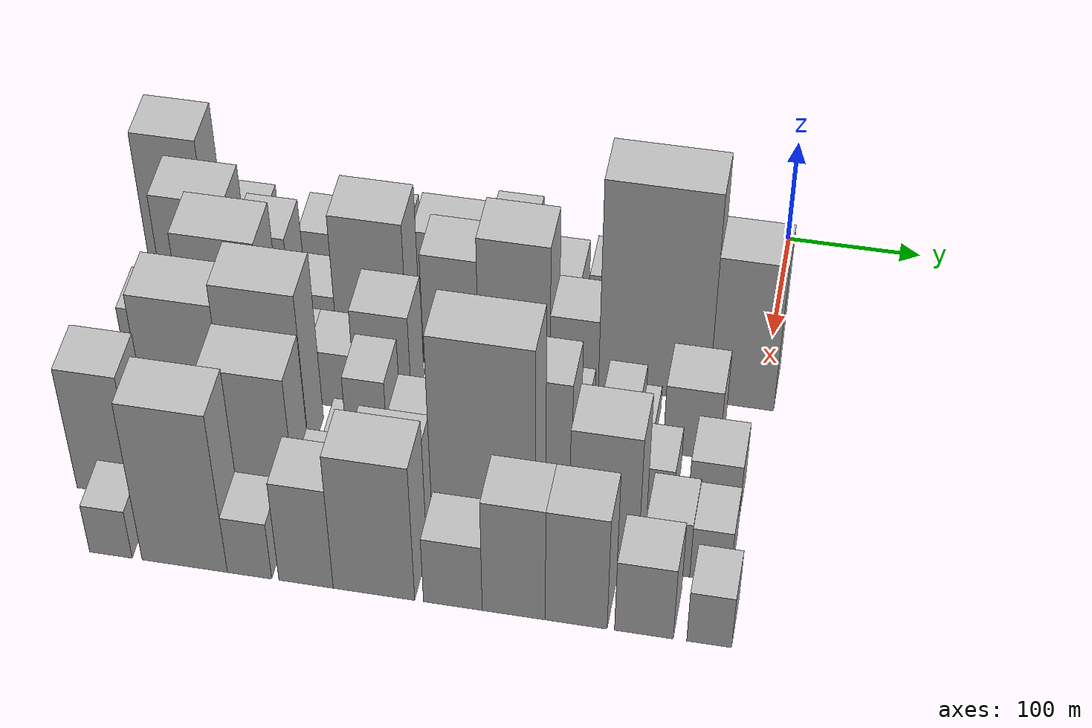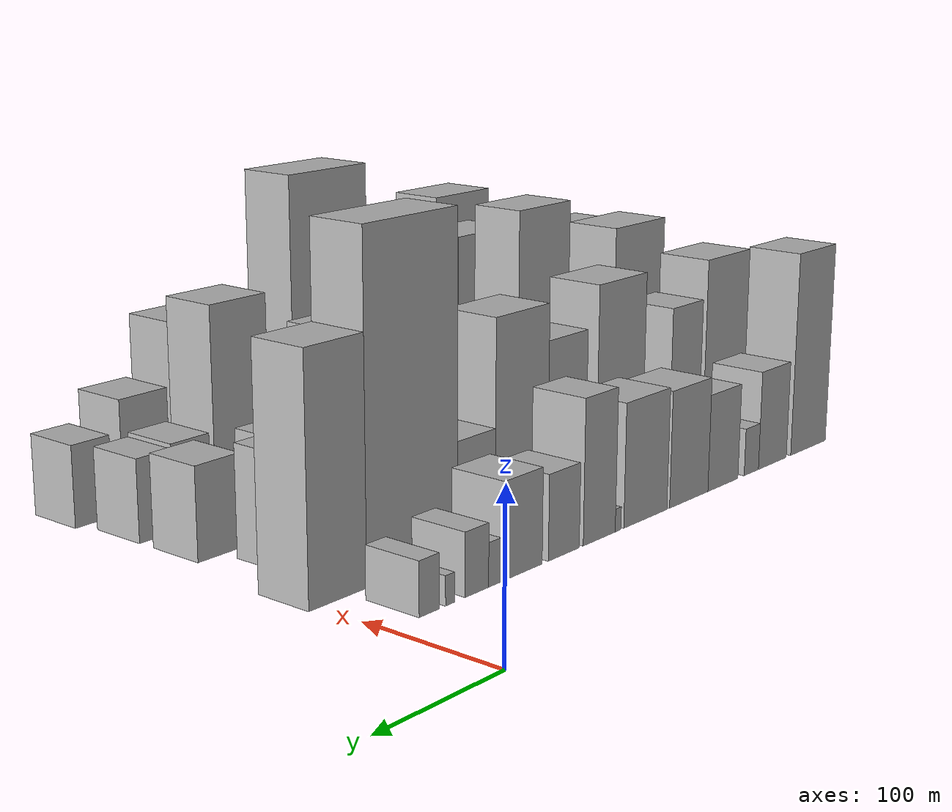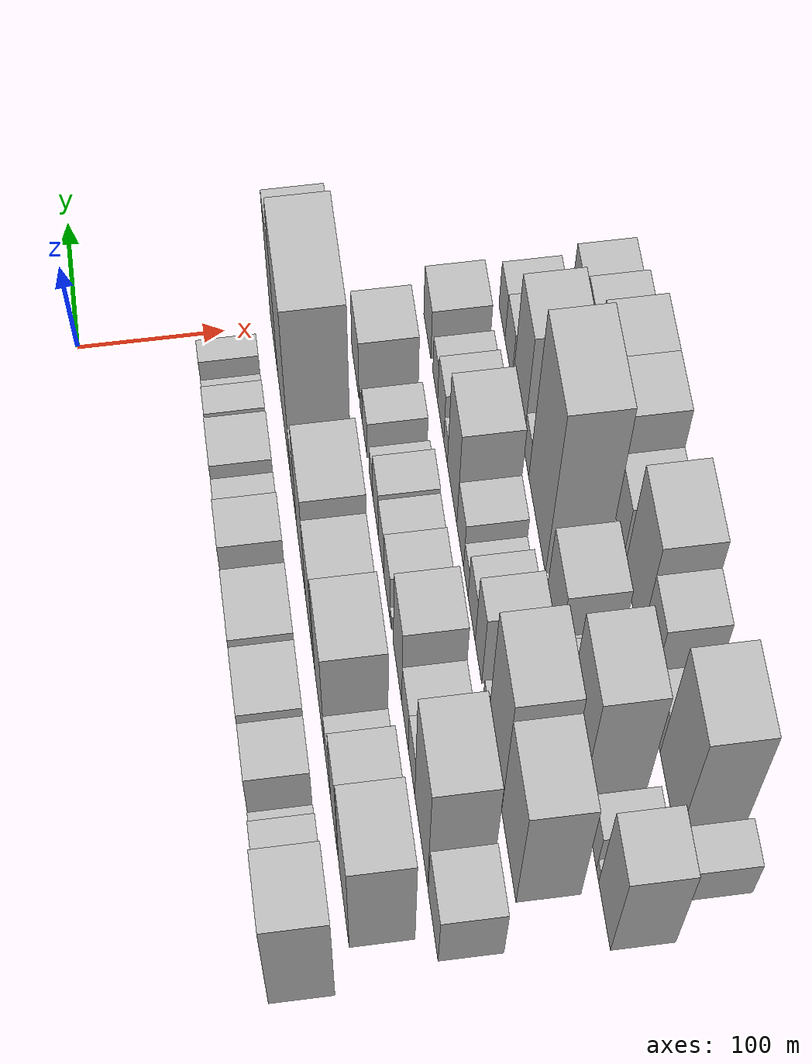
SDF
<sdf version="1.6">
 <world name="default">
  <model name="building_13">
   <static>1</static>
   <pose>100.0000 -442.8668 0 0.000000 0.000000 0.000000</pose>
   <link name="link">
    <pose>0 0 72.00 0 0 0</pose>
    <collision name="collision"><geometry><box><size>40.0000 48.4077 144.0000</size></box></geometry></collision>
    <visual name="visual">
     <cast_shadows>0</cast_shadows>
     <geometry><box><size>40.0000 48.4077 144.0000</size></box></geometry>
     <material>
      <script>
       <uri>model://HANNAS_wall/materials/scripts</uri>
       <uri>model://HANNAS_wall/materials/textures</uri>
       <name>vrc/HANNAS_wall</name>
      </script>
     </material>
    </visual>
   </link>
  </model>
  <model name="building_14">
   <static>1</static>
   <pose>100.0000 -394.2044 0 0.000000 0.000000 0.000000</pose>
   <link name="link">
    <pose>0 0 34.50 0 0 0</pose>
    <collision name="collision"><geometry><box><size>40.0000 36.9172 69.0000</size></box></geometry></collision>
    <visual name="visual">
     <cast_shadows>0</cast_shadows>
     <geometry><box><size>40.0000 36.9172 69.0000</size></box></geometry>
     <material>
      <script>
       <uri>model://HANNAS_wall/materials/scripts</uri>
       <uri>model://HANNAS_wall/materials/textures</uri>
       <name>vrc/HANNAS_wall</name>
      </script>
     </material>
    </visual>
   </link>
  </model>
  <model name="building_15">
   <static>1</static>
   <pose>100.0000 -366.6062 0 0.000000 0.000000 0.000000</pose>
   <link name="link">
    <pose>0 0 16.50 0 0 0</pose>
    <collision name="collision"><geometry><box><size>40.0000 18.2792 33.0000</size></box></geometry></collision>
    <visual name="visual">
     <cast_shadows>0</cast_shadows>
     <geometry><box><size>40.0000 18.2792 33.0000</size></box></geometry>
     <material>
      <script>
       <uri>model://HANNAS_wall/materials/scripts</uri>
       <uri>model://HANNAS_wall/materials/textures</uri>
       <name>vrc/HANNAS_wall</name>
      </script>
     </material>
    </visual>
   </link>
  </model>
  <model name="building_16">
   <static>1</static>
   <pose>100.0000 -330.9921 0 0.000000 0.000000 0.000000</pose>
   <link name="link">
    <pose>0 0 33.00 0 0 0</pose>
    <collision name="collision"><geometry><box><size>40.0000 36.9489 66.0000</size></box></geometry></collision>
    <visual name="visual">
     <cast_shadows>0</cast_shadows>
     <geometry><box><size>40.0000 36.9489 66.0000</size></box></geometry>
     <material>
      <script>
       <uri>model://HANNAS_wall/materials/scripts</uri>
       <uri>model://HANNAS_wall/materials/textures</uri>
       <name>vrc/HANNAS_wall</name>
      </script>
     </material>
    </visual>
   </link>
  </model>
  <model name="building_17">
   <static>1</static>
   <pose>100.0000 -290.0274 0 0.000000 0.000000 0.000000</pose>
   <link name="link">
    <pose>0 0 39.00 0 0 0</pose>
    <collision name="collision"><geometry><box><size>40.0000 44.9806 78.0000</size></box></geometry></collision>
    <visual name="visual">
     <cast_shadows>0</cast_shadows>
     <geometry><box><size>40.0000 44.9806 78.0000</size></box></geometry>
     <material>
      <script>
       <uri>model://HANNAS_wall/materials/scripts</uri>
       <uri>model://HANNAS_wall/materials/textures</uri>
       <name>vrc/HANNAS_wall</name>
      </script>
     </material>
    </visual>
   </link>
  </model>
  <model name="building_18">
   <static>1</static>
   <pose>100.0000 -240.7067 0 0.000000 0.000000 0.000000</pose>
   <link name="link">
    <pose>0 0 40.50 0 0 0</pose>
    <collision name="collision"><geometry><box><size>40.0000 47.6607 81.0000</size></box></geometry></collision>
    <visual name="visual">
     <cast_shadows>0</cast_shadows>
     <geometry><box><size>40.0000 47.6607 81.0000</size></box></geometry>
     <material>
      <script>
       <uri>model://HANNAS_wall/materials/scripts</uri>
       <uri>model://HANNAS_wall/materials/textures</uri>
       <name>vrc/HANNAS_wall</name>
      </script>
     </material>
    </visual>
   </link>
  </model>
  <model name="building_19">
   <static>1</static>
   <pose>100.0000 -210.8324 0 0.000000 0.000000 0.000000</pose>
   <link name="link">
    <pose>0 0 7.50 0 0 0</pose>
    <collision name="collision"><geometry><box><size>40.0000 6.0879 15.0000</size></box></geometry></collision>
    <visual name="visual">
     <cast_shadows>0</cast_shadows>
     <geometry><box><size>40.0000 6.0879 15.0000</size></box></geometry>
     <material>
      <script>
       <uri>model://HANNAS_wall/materials/scripts</uri>
       <uri>model://HANNAS_wall/materials/textures</uri>
       <name>vrc/HANNAS_wall</name>
      </script>
     </material>
    </visual>
   </link>
  </model>
  <model name="building_20">
   <static>1</static>
   <pose>100.0000 -191.2011 0 0.000000 0.000000 0.000000</pose>
   <link name="link">
    <pose>0 0 46.50 0 0 0</pose>
    <collision name="collision"><geometry><box><size>40.0000 33.1748 93.0000</size></box></geometry></collision>
    <visual name="visual">
     <cast_shadows>0</cast_shadows>
     <geometry><box><size>40.0000 33.1748 93.0000</size></box></geometry>
     <material>
      <script>
       <uri>model://HANNAS_wall/materials/scripts</uri>
       <uri>model://HANNAS_wall/materials/textures</uri>
       <name>vrc/HANNAS_wall</name>
      </script>
     </material>
    </visual>
   </link>
  </model>
  <model name="building_21">
   <static>1</static>
   <pose>100.0000 -155.3330 0 0.000000 0.000000 0.000000</pose>
   <link name="link">
    <pose>0 0 27.00 0 0 0</pose>
    <collision name="collision"><geometry><box><size>40.0000 30.5614 54.0000</size></box></geometry></collision>
    <visual name="visual">
     <cast_shadows>0</cast_shadows>
     <geometry><box><size>40.0000 30.5614 54.0000</size></box></geometry>
     <material>
      <script>
       <uri>model://HANNAS_wall/materials/scripts</uri>
       <uri>model://HANNAS_wall/materials/textures</uri>
       <name>vrc/HANNAS_wall</name>
      </script>
     </material>
    </visual>
   </link>
  </model>
  <model name="building_22">
   <static>1</static>
   <pose>100.0000 -116.2851 0 0.000000 0.000000 0.000000</pose>
   <link name="link">
    <pose>0 0 30.00 0 0 0</pose>
    <collision name="collision"><geometry><box><size>40.0000 35.5343 60.0000</size></box></geometry></collision>
    <visual name="visual">
     <cast_shadows>0</cast_shadows>
     <geometry><box><size>40.0000 35.5343 60.0000</size></box></geometry>
     <material>
      <script>
       <uri>model://HANNAS_wall/materials/scripts</uri>
       <uri>model://HANNAS_wall/materials/textures</uri>
       <name>vrc/HANNAS_wall</name>
      </script>
     </material>
    </visual>
   </link>
  </model>
  <model name="building_23">
   <static>1</static>
   <pose>100.0000 -89.9354 0 0.000000 0.000000 0.000000</pose>
   <link name="link">
    <pose>0 0 13.50 0 0 0</pose>
    <collision name="collision"><geometry><box><size>40.0000 11.1652 27.0000</size></box></geometry></collision>
    <visual name="visual">
     <cast_shadows>0</cast_shadows>
     <geometry><box><size>40.0000 11.1652 27.0000</size></box></geometry>
     <material>
      <script>
       <uri>model://HANNAS_wall/materials/scripts</uri>
       <uri>model://HANNAS_wall/materials/textures</uri>
       <name>vrc/HANNAS_wall</name>
      </script>
     </material>
    </visual>
   </link>
  </model>
  <model name="building_24">
   <static>1</static>
   <pose>100.0000 -73.9870 0 0.000000 0.000000 0.000000</pose>
   <link name="link">
    <pose>0 0 19.50 0 0 0</pose>
    <collision name="collision"><geometry><box><size>40.0000 20.7316 39.0000</size></box></geometry></collision>
    <visual name="visual">
     <cast_shadows>0</cast_shadows>
     <geometry><box><size>40.0000 20.7316 39.0000</size></box></geometry>
     <material>
      <script>
       <uri>model://HANNAS_wall/materials/scripts</uri>
       <uri>model://HANNAS_wall/materials/textures</uri>
       <name>vrc/HANNAS_wall</name>
      </script>
     </material>
    </visual>
   </link>
  </model>
  <model name="building_25">
   <static>1</static>
   <pose>100.0000 -50.6475 0 0.000000 0.000000 0.000000</pose>
   <link name="link">
    <pose>0 0 9.00 0 0 0</pose>
    <collision name="collision"><geometry><box><size>40.0000 7.9473 18.0000</size></box></geometry></collision>
    <visual name="visual">
     <cast_shadows>0</cast_shadows>
     <geometry><box><size>40.0000 7.9473 18.0000</size></box></geometry>
     <material>
      <script>
       <uri>model://HANNAS_wall/materials/scripts</uri>
       <uri>model://HANNAS_wall/materials/textures</uri>
       <name>vrc/HANNAS_wall</name>
      </script>
     </material>
    </visual>
   </link>
  </model>
  <model name="building_26">
   <static>1</static>
   <pose>100.0000 -33.1180 0 0.000000 0.000000 0.000000</pose>
   <link name="link">
    <pose>0 0 16.50 0 0 0</pose>
    <collision name="collision"><geometry><box><size>40.0000 17.1118 33.0000</size></box></geometry></collision>
    <visual name="visual">
     <cast_shadows>0</cast_shadows>
     <geometry><box><size>40.0000 17.1118 33.0000</size></box></geometry>
     <material>
      <script>
       <uri>model://HANNAS_wall/materials/scripts</uri>
       <uri>model://HANNAS_wall/materials/textures</uri>
       <name>vrc/HANNAS_wall</name>
      </script>
     </material>
    </visual>
   </link>
  </model>
  <model name="building_63">
   <static>1</static>
   <pose>152.0000 -412.0536 0 0.000000 0.000000 0.000000</pose>
   <link name="link">
    <pose>0 0 69.00 0 0 0</pose>
    <collision name="collision"><geometry><box><size>40.0000 53.6897 138.0000</size></box></geometry></collision>
    <visual name="visual">
     <cast_shadows>0</cast_shadows>
     <geometry><box><size>40.0000 53.6897 138.0000</size></box></geometry>
     <material>
      <script>
       <uri>model://HANNAS_wall/materials/scripts</uri>
       <uri>model://HANNAS_wall/materials/textures</uri>
       <name>vrc/HANNAS_wall</name>
      </script>
     </material>
    </visual>
   </link>
  </model>
  <model name="building_64">
   <static>1</static>
   <pose>152.0000 -361.8021 0 0.000000 0.000000 0.000000</pose>
   <link name="link">
    <pose>0 0 55.50 0 0 0</pose>
    <collision name="collision"><geometry><box><size>40.0000 36.8133 111.0000</size></box></geometry></collision>
    <visual name="visual">
     <cast_shadows>0</cast_shadows>
     <geometry><box><size>40.0000 36.8133 111.0000</size></box></geometry>
     <material>
      <script>
       <uri>model://HANNAS_wall/materials/scripts</uri>
       <uri>model://HANNAS_wall/materials/textures</uri>
       <name>vrc/HANNAS_wall</name>
      </script>
     </material>
    </visual>
   </link>
  </model>
  <model name="building_65">
   <static>1</static>
   <pose>152.0000 -327.1428 0 0.000000 0.000000 0.000000</pose>
   <link name="link">
    <pose>0 0 28.50 0 0 0</pose>
    <collision name="collision"><geometry><box><size>40.0000 32.5052 57.0000</size></box></geometry></collision>
    <visual name="visual">
     <cast_shadows>0</cast_shadows>
     <geometry><box><size>40.0000 32.5052 57.0000</size></box></geometry>
     <material>
      <script>
       <uri>model://HANNAS_wall/materials/scripts</uri>
       <uri>model://HANNAS_wall/materials/textures</uri>
       <name>vrc/HANNAS_wall</name>
      </script>
     </material>
    </visual>
   </link>
  </model>
  <model name="building_66">
   <static>1</static>
   <pose>152.0000 -284.6054 0 0.000000 0.000000 0.000000</pose>
   <link name="link">
    <pose>0 0 70.50 0 0 0</pose>
    <collision name="collision"><geometry><box><size>40.0000 52.5697 141.0000</size></box></geometry></collision>
    <visual name="visual">
     <cast_shadows>0</cast_shadows>
     <geometry><box><size>40.0000 52.5697 141.0000</size></box></geometry>
     <material>
      <script>
       <uri>model://HANNAS_wall/materials/scripts</uri>
       <uri>model://HANNAS_wall/materials/textures</uri>
       <name>vrc/HANNAS_wall</name>
      </script>
     </material>
    </visual>
   </link>
  </model>
  <model name="building_67">
   <static>1</static>
   <pose>152.0000 -252.5004 0 0.000000 0.000000 0.000000</pose>
   <link name="link">
    <pose>0 0 13.50 0 0 0</pose>
    <collision name="collision"><geometry><box><size>40.0000 11.6403 27.0000</size></box></geometry></collision>
    <visual name="visual">
     <cast_shadows>0</cast_shadows>
     <geometry><box><size>40.0000 11.6403 27.0000</size></box></geometry>
     <material>
      <script>
       <uri>model://HANNAS_wall/materials/scripts</uri>
       <uri>model://HANNAS_wall/materials/textures</uri>
       <name>vrc/HANNAS_wall</name>
      </script>
     </material>
    </visual>
   </link>
  </model>
  <model name="building_68">
   <static>1</static>
   <pose>152.0000 -226.4632 0 0.000000 0.000000 0.000000</pose>
   <link name="link">
    <pose>0 0 57.00 0 0 0</pose>
    <collision name="collision"><geometry><box><size>40.0000 40.4341 114.0000</size></box></geometry></collision>
    <visual name="visual">
     <cast_shadows>0</cast_shadows>
     <geometry><box><size>40.0000 40.4341 114.0000</size></box></geometry>
     <material>
      <script>
       <uri>model://HANNAS_wall/materials/scripts</uri>
       <uri>model://HANNAS_wall/materials/textures</uri>
       <name>vrc/HANNAS_wall</name>
      </script>
     </material>
    </visual>
   </link>
  </model>
  <model name="building_69">
   <static>1</static>
   <pose>152.0000 -180.0314 0 0.000000 0.000000 0.000000</pose>
   <link name="link">
    <pose>0 0 69.00 0 0 0</pose>
    <collision name="collision"><geometry><box><size>40.0000 52.4296 138.0000</size></box></geometry></collision>
    <visual name="visual">
     <cast_shadows>0</cast_shadows>
     <geometry><box><size>40.0000 52.4296 138.0000</size></box></geometry>
     <material>
      <script>
       <uri>model://HANNAS_wall/materials/scripts</uri>
       <uri>model://HANNAS_wall/materials/textures</uri>
       <name>vrc/HANNAS_wall</name>
      </script>
     </material>
    </visual>
   </link>
  </model>
  <model name="building_70">
   <static>1</static>
   <pose>152.0000 -136.0870 0 0.000000 0.000000 0.000000</pose>
   <link name="link">
    <pose>0 0 34.50 0 0 0</pose>
    <collision name="collision"><geometry><box><size>40.0000 35.4592 69.0000</size></box></geometry></collision>
    <visual name="visual">
     <cast_shadows>0</cast_shadows>
     <geometry><box><size>40.0000 35.4592 69.0000</size></box></geometry>
     <material>
      <script>
       <uri>model://HANNAS_wall/materials/scripts</uri>
       <uri>model://HANNAS_wall/materials/textures</uri>
       <name>vrc/HANNAS_wall</name>
      </script>
     </material>
    </visual>
   </link>
  </model>
  <model name="building_71">
   <static>1</static>
   <pose>152.0000 -78.3478 0 0.000000 0.000000 0.000000</pose>
   <link name="link">
    <pose>0 0 105.00 0 0 0</pose>
    <collision name="collision"><geometry><box><size>40.0000 80.0192 210.0000</size></box></geometry></collision>
    <visual name="visual">
     <cast_shadows>0</cast_shadows>
     <geometry><box><size>40.0000 80.0192 210.0000</size></box></geometry>
     <material>
      <script>
       <uri>model://HANNAS_wall/materials/scripts</uri>
       <uri>model://HANNAS_wall/materials/textures</uri>
       <name>vrc/HANNAS_wall</name>
      </script>
     </material>
    </visual>
   </link>
  </model>
  <model name="building_72">
   <static>1</static>
   <pose>152.0000 -14.9085 0 0.000000 0.000000 0.000000</pose>
   <link name="link">
    <pose>0 0 75.00 0 0 0</pose>
    <collision name="collision"><geometry><box><size>40.0000 46.8594 150.0000</size></box></geometry></collision>
    <visual name="visual">
     <cast_shadows>0</cast_shadows>
     <geometry><box><size>40.0000 46.8594 150.0000</size></box></geometry>
     <material>
      <script>
       <uri>model://HANNAS_wall/materials/scripts</uri>
       <uri>model://HANNAS_wall/materials/textures</uri>
       <name>vrc/HANNAS_wall</name>
      </script>
     </material>
    </visual>
   </link>
  </model>
  <model name="building_106">
   <static>1</static>
   <pose>204.0000 -431.9958 0 0.000000 0.000000 0.000000</pose>
   <link name="link">
    <pose>0 0 37.50 0 0 0</pose>
    <collision name="collision"><geometry><box><size>40.0000 44.2506 75.0000</size></box></geometry></collision>
    <visual name="visual">
     <cast_shadows>0</cast_shadows>
     <geometry><box><size>40.0000 44.2506 75.0000</size></box></geometry>
     <material>
      <script>
       <uri>model://HANNAS_wall/materials/scripts</uri>
       <uri>model://HANNAS_wall/materials/textures</uri>
       <name>vrc/HANNAS_wall</name>
      </script>
     </material>
    </visual>
   </link>
  </model>
  <model name="building_107">
   <static>1</static>
   <pose>204.0000 -377.4694 0 0.000000 0.000000 0.000000</pose>
   <link name="link">
    <pose>0 0 79.50 0 0 0</pose>
    <collision name="collision"><geometry><box><size>40.0000 58.8022 159.0000</size></box></geometry></collision>
    <visual name="visual">
     <cast_shadows>0</cast_shadows>
     <geometry><box><size>40.0000 58.8022 159.0000</size></box></geometry>
     <material>
      <script>
       <uri>model://HANNAS_wall/materials/scripts</uri>
       <uri>model://HANNAS_wall/materials/textures</uri>
       <name>vrc/HANNAS_wall</name>
      </script>
     </material>
    </visual>
   </link>
  </model>
  <model name="building_108">
   <static>1</static>
   <pose>204.0000 -332.6631 0 0.000000 0.000000 0.000000</pose>
   <link name="link">
    <pose>0 0 28.50 0 0 0</pose>
    <collision name="collision"><geometry><box><size>40.0000 30.8104 57.0000</size></box></geometry></collision>
    <visual name="visual">
     <cast_shadows>0</cast_shadows>
     <geometry><box><size>40.0000 30.8104 57.0000</size></box></geometry>
     <material>
      <script>
       <uri>model://HANNAS_wall/materials/scripts</uri>
       <uri>model://HANNAS_wall/materials/textures</uri>
       <name>vrc/HANNAS_wall</name>
      </script>
     </material>
    </visual>
   </link>
  </model>
  <model name="building_109">
   <static>1</static>
   <pose>204.0000 -301.2770 0 0.000000 0.000000 0.000000</pose>
   <link name="link">
    <pose>0 0 28.50 0 0 0</pose>
    <collision name="collision"><geometry><box><size>40.0000 31.9618 57.0000</size></box></geometry></collision>
    <visual name="visual">
     <cast_shadows>0</cast_shadows>
     <geometry><box><size>40.0000 31.9618 57.0000</size></box></geometry>
     <material>
      <script>
       <uri>model://HANNAS_wall/materials/scripts</uri>
       <uri>model://HANNAS_wall/materials/textures</uri>
       <name>vrc/HANNAS_wall</name>
      </script>
     </material>
    </visual>
   </link>
  </model>
  <model name="building_110">
   <static>1</static>
   <pose>204.0000 -264.7619 0 0.000000 0.000000 0.000000</pose>
   <link name="link">
    <pose>0 0 52.50 0 0 0</pose>
    <collision name="collision"><geometry><box><size>40.0000 41.0684 105.0000</size></box></geometry></collision>
    <visual name="visual">
     <cast_shadows>0</cast_shadows>
     <geometry><box><size>40.0000 41.0684 105.0000</size></box></geometry>
     <material>
      <script>
       <uri>model://HANNAS_wall/materials/scripts</uri>
       <uri>model://HANNAS_wall/materials/textures</uri>
       <name>vrc/HANNAS_wall</name>
      </script>
     </material>
    </visual>
   </link>
  </model>
  <model name="building_111">
   <static>1</static>
   <pose>204.0000 -230.5178 0 0.000000 0.000000 0.000000</pose>
   <link name="link">
    <pose>0 0 9.00 0 0 0</pose>
    <collision name="collision"><geometry><box><size>40.0000 7.4198 18.0000</size></box></geometry></collision>
    <visual name="visual">
     <cast_shadows>0</cast_shadows>
     <geometry><box><size>40.0000 7.4198 18.0000</size></box></geometry>
     <material>
      <script>
       <uri>model://HANNAS_wall/materials/scripts</uri>
       <uri>model://HANNAS_wall/materials/textures</uri>
       <name>vrc/HANNAS_wall</name>
      </script>
     </material>
    </visual>
   </link>
  </model>
  <model name="building_112">
   <static>1</static>
   <pose>204.0000 -211.2936 0 0.000000 0.000000 0.000000</pose>
   <link name="link">
    <pose>0 0 30.00 0 0 0</pose>
    <collision name="collision"><geometry><box><size>40.0000 31.0286 60.0000</size></box></geometry></collision>
    <visual name="visual">
     <cast_shadows>0</cast_shadows>
     <geometry><box><size>40.0000 31.0286 60.0000</size></box></geometry>
     <material>
      <script>
       <uri>model://HANNAS_wall/materials/scripts</uri>
       <uri>model://HANNAS_wall/materials/textures</uri>
       <name>vrc/HANNAS_wall</name>
      </script>
     </material>
    </visual>
   </link>
  </model>
  <model name="building_113">
   <static>1</static>
   <pose>204.0000 -181.3317 0 0.000000 0.000000 0.000000</pose>
   <link name="link">
    <pose>0 0 25.50 0 0 0</pose>
    <collision name="collision"><geometry><box><size>40.0000 28.8951 51.0000</size></box></geometry></collision>
    <visual name="visual">
     <cast_shadows>0</cast_shadows>
     <geometry><box><size>40.0000 28.8951 51.0000</size></box></geometry>
     <material>
      <script>
       <uri>model://HANNAS_wall/materials/scripts</uri>
       <uri>model://HANNAS_wall/materials/textures</uri>
       <name>vrc/HANNAS_wall</name>
      </script>
     </material>
    </visual>
   </link>
  </model>
  <model name="building_114">
   <static>1</static>
   <pose>204.0000 -152.5142 0 0.000000 0.000000 0.000000</pose>
   <link name="link">
    <pose>0 0 28.50 0 0 0</pose>
    <collision name="collision"><geometry><box><size>40.0000 28.7399 57.0000</size></box></geometry></collision>
    <visual name="visual">
     <cast_shadows>0</cast_shadows>
     <geometry><box><size>40.0000 28.7399 57.0000</size></box></geometry>
     <material>
      <script>
       <uri>model://HANNAS_wall/materials/scripts</uri>
       <uri>model://HANNAS_wall/materials/textures</uri>
       <name>vrc/HANNAS_wall</name>
      </script>
     </material>
    </visual>
   </link>
  </model>
  <model name="building_115">
   <static>1</static>
   <pose>204.0000 -128.4419 0 0.000000 0.000000 0.000000</pose>
   <link name="link">
    <pose>0 0 16.50 0 0 0</pose>
    <collision name="collision"><geometry><box><size>40.0000 19.4047 33.0000</size></box></geometry></collision>
    <visual name="visual">
     <cast_shadows>0</cast_shadows>
     <geometry><box><size>40.0000 19.4047 33.0000</size></box></geometry>
     <material>
      <script>
       <uri>model://HANNAS_wall/materials/scripts</uri>
       <uri>model://HANNAS_wall/materials/textures</uri>
       <name>vrc/HANNAS_wall</name>
      </script>
     </material>
    </visual>
   </link>
  </model>
  <model name="building_116">
   <static>1</static>
   <pose>204.0000 -95.3311 0 0.000000 0.000000 0.000000</pose>
   <link name="link">
    <pose>0 0 22.50 0 0 0</pose>
    <collision name="collision"><geometry><box><size>40.0000 26.8168 45.0000</size></box></geometry></collision>
    <visual name="visual">
     <cast_shadows>0</cast_shadows>
     <geometry><box><size>40.0000 26.8168 45.0000</size></box></geometry>
     <material>
      <script>
       <uri>model://HANNAS_wall/materials/scripts</uri>
       <uri>model://HANNAS_wall/materials/textures</uri>
       <name>vrc/HANNAS_wall</name>
      </script>
     </material>
    </visual>
   </link>
  </model>
  <model name="building_117">
   <static>1</static>
   <pose>204.0000 -76.4232 0 0.000000 0.000000 0.000000</pose>
   <link name="link">
    <pose>0 0 12.00 0 0 0</pose>
    <collision name="collision"><geometry><box><size>40.0000 10.9991 24.0000</size></box></geometry></collision>
    <visual name="visual">
     <cast_shadows>0</cast_shadows>
     <geometry><box><size>40.0000 10.9991 24.0000</size></box></geometry>
     <material>
      <script>
       <uri>model://HANNAS_wall/materials/scripts</uri>
       <uri>model://HANNAS_wall/materials/textures</uri>
       <name>vrc/HANNAS_wall</name>
      </script>
     </material>
    </visual>
   </link>
  </model>
  <model name="building_118">
   <static>1</static>
   <pose>204.0000 -43.9648 0 0.000000 0.000000 0.000000</pose>
   <link name="link">
    <pose>0 0 36.00 0 0 0</pose>
    <collision name="collision"><geometry><box><size>40.0000 39.9176 72.0000</size></box></geometry></collision>
    <visual name="visual">
     <cast_shadows>0</cast_shadows>
     <geometry><box><size>40.0000 39.9176 72.0000</size></box></geometry>
     <material>
      <script>
       <uri>model://HANNAS_wall/materials/scripts</uri>
       <uri>model://HANNAS_wall/materials/textures</uri>
       <name>vrc/HANNAS_wall</name>
      </script>
     </material>
    </visual>
   </link>
  </model>
  <model name="building_158">
   <static>1</static>
   <pose>256.0000 -394.2162 0 0.000000 0.000000 0.000000</pose>
   <link name="link">
    <pose>0 0 75.00 0 0 0</pose>
    <collision name="collision"><geometry><box><size>40.0000 59.0223 150.0000</size></box></geometry></collision>
    <visual name="visual">
     <cast_shadows>0</cast_shadows>
     <geometry><box><size>40.0000 59.0223 150.0000</size></box></geometry>
     <material>
      <script>
       <uri>model://HANNAS_wall/materials/scripts</uri>
       <uri>model://HANNAS_wall/materials/textures</uri>
       <name>vrc/HANNAS_wall</name>
      </script>
     </material>
    </visual>
   </link>
  </model>
  <model name="building_159">
   <static>1</static>
   <pose>256.0000 -335.5661 0 0.000000 0.000000 0.000000</pose>
   <link name="link">
    <pose>0 0 85.50 0 0 0</pose>
    <collision name="collision"><geometry><box><size>40.0000 58.2779 171.0000</size></box></geometry></collision>
    <visual name="visual">
     <cast_shadows>0</cast_shadows>
     <geometry><box><size>40.0000 58.2779 171.0000</size></box></geometry>
     <material>
      <script>
       <uri>model://HANNAS_wall/materials/scripts</uri>
       <uri>model://HANNAS_wall/materials/textures</uri>
       <name>vrc/HANNAS_wall</name>
      </script>
     </material>
    </visual>
   </link>
  </model>
  <model name="building_160">
   <static>1</static>
   <pose>256.0000 -292.0462 0 0.000000 0.000000 0.000000</pose>
   <link name="link">
    <pose>0 0 12.00 0 0 0</pose>
    <collision name="collision"><geometry><box><size>40.0000 10.7619 24.0000</size></box></geometry></collision>
    <visual name="visual">
     <cast_shadows>0</cast_shadows>
     <geometry><box><size>40.0000 10.7619 24.0000</size></box></geometry>
     <material>
      <script>
       <uri>model://HANNAS_wall/materials/scripts</uri>
       <uri>model://HANNAS_wall/materials/textures</uri>
       <name>vrc/HANNAS_wall</name>
      </script>
     </material>
    </visual>
   </link>
  </model>
  <model name="building_161">
   <static>1</static>
   <pose>256.0000 -264.1269 0 0.000000 0.000000 0.000000</pose>
   <link name="link">
    <pose>0 0 48.00 0 0 0</pose>
    <collision name="collision"><geometry><box><size>40.0000 29.0767 96.0000</size></box></geometry></collision>
    <visual name="visual">
     <cast_shadows>0</cast_shadows>
     <geometry><box><size>40.0000 29.0767 96.0000</size></box></geometry>
     <material>
      <script>
       <uri>model://HANNAS_wall/materials/scripts</uri>
       <uri>model://HANNAS_wall/materials/textures</uri>
       <name>vrc/HANNAS_wall</name>
      </script>
     </material>
    </visual>
   </link>
  </model>
  <model name="building_162">
   <static>1</static>
   <pose>256.0000 -233.6699 0 0.000000 0.000000 0.000000</pose>
   <link name="link">
    <pose>0 0 30.00 0 0 0</pose>
    <collision name="collision"><geometry><box><size>40.0000 31.8372 60.0000</size></box></geometry></collision>
    <visual name="visual">
     <cast_shadows>0</cast_shadows>
     <geometry><box><size>40.0000 31.8372 60.0000</size></box></geometry>
     <material>
      <script>
       <uri>model://HANNAS_wall/materials/scripts</uri>
       <uri>model://HANNAS_wall/materials/textures</uri>
       <name>vrc/HANNAS_wall</name>
      </script>
     </material>
    </visual>
   </link>
  </model>
  <model name="building_163">
   <static>1</static>
   <pose>256.0000 -207.3540 0 0.000000 0.000000 0.000000</pose>
   <link name="link">
    <pose>0 0 18.00 0 0 0</pose>
    <collision name="collision"><geometry><box><size>40.0000 20.7947 36.0000</size></box></geometry></collision>
    <visual name="visual">
     <cast_shadows>0</cast_shadows>
     <geometry><box><size>40.0000 20.7947 36.0000</size></box></geometry>
     <material>
      <script>
       <uri>model://HANNAS_wall/materials/scripts</uri>
       <uri>model://HANNAS_wall/materials/textures</uri>
       <name>vrc/HANNAS_wall</name>
      </script>
     </material>
    </visual>
   </link>
  </model>
  <model name="building_164">
   <static>1</static>
   <pose>256.0000 -181.2437 0 0.000000 0.000000 0.000000</pose>
   <link name="link">
    <pose>0 0 30.00 0 0 0</pose>
    <collision name="collision"><geometry><box><size>40.0000 31.4259 60.0000</size></box></geometry></collision>
    <visual name="visual">
     <cast_shadows>0</cast_shadows>
     <geometry><box><size>40.0000 31.4259 60.0000</size></box></geometry>
     <material>
      <script>
       <uri>model://HANNAS_wall/materials/scripts</uri>
       <uri>model://HANNAS_wall/materials/textures</uri>
       <name>vrc/HANNAS_wall</name>
      </script>
     </material>
    </visual>
   </link>
  </model>
  <model name="building_165">
   <static>1</static>
   <pose>256.0000 -143.0089 0 0.000000 0.000000 0.000000</pose>
   <link name="link">
    <pose>0 0 60.00 0 0 0</pose>
    <collision name="collision"><geometry><box><size>40.0000 45.0437 120.0000</size></box></geometry></collision>
    <visual name="visual">
     <cast_shadows>0</cast_shadows>
     <geometry><box><size>40.0000 45.0437 120.0000</size></box></geometry>
     <material>
      <script>
       <uri>model://HANNAS_wall/materials/scripts</uri>
       <uri>model://HANNAS_wall/materials/textures</uri>
       <name>vrc/HANNAS_wall</name>
      </script>
     </material>
    </visual>
   </link>
  </model>
  <model name="building_166">
   <static>1</static>
   <pose>256.0000 -111.8336 0 0.000000 0.000000 0.000000</pose>
   <link name="link">
    <pose>0 0 16.50 0 0 0</pose>
    <collision name="collision"><geometry><box><size>40.0000 17.3068 33.0000</size></box></geometry></collision>
    <visual name="visual">
     <cast_shadows>0</cast_shadows>
     <geometry><box><size>40.0000 17.3068 33.0000</size></box></geometry>
     <material>
      <script>
       <uri>model://HANNAS_wall/materials/scripts</uri>
       <uri>model://HANNAS_wall/materials/textures</uri>
       <name>vrc/HANNAS_wall</name>
      </script>
     </material>
    </visual>
   </link>
  </model>
  <model name="building_167">
   <static>1</static>
   <pose>256.0000 -88.0276 0 0.000000 0.000000 0.000000</pose>
   <link name="link">
    <pose>0 0 30.00 0 0 0</pose>
    <collision name="collision"><geometry><box><size>40.0000 30.3052 60.0000</size></box></geometry></collision>
    <visual name="visual">
     <cast_shadows>0</cast_shadows>
     <geometry><box><size>40.0000 30.3052 60.0000</size></box></geometry>
     <material>
      <script>
       <uri>model://HANNAS_wall/materials/scripts</uri>
       <uri>model://HANNAS_wall/materials/textures</uri>
       <name>vrc/HANNAS_wall</name>
      </script>
     </material>
    </visual>
   </link>
  </model>
  <model name="building_168">
   <static>1</static>
   <pose>256.0000 -61.0045 0 0.000000 0.000000 0.000000</pose>
   <link name="link">
    <pose>0 0 22.50 0 0 0</pose>
    <collision name="collision"><geometry><box><size>40.0000 23.7411 45.0000</size></box></geometry></collision>
    <visual name="visual">
     <cast_shadows>0</cast_shadows>
     <geometry><box><size>40.0000 23.7411 45.0000</size></box></geometry>
     <material>
      <script>
       <uri>model://HANNAS_wall/materials/scripts</uri>
       <uri>model://HANNAS_wall/materials/textures</uri>
       <name>vrc/HANNAS_wall</name>
      </script>
     </material>
    </visual>
   </link>
  </model>
  <model name="building_169">
   <static>1</static>
   <pose>256.0000 -21.3351 0 0.000000 0.000000 0.000000</pose>
   <link name="link">
    <pose>0 0 30.00 0 0 0</pose>
    <collision name="collision"><geometry><box><size>40.0000 35.5977 60.0000</size></box></geometry></collision>
    <visual name="visual">
     <cast_shadows>0</cast_shadows>
     <geometry><box><size>40.0000 35.5977 60.0000</size></box></geometry>
     <material>
      <script>
       <uri>model://HANNAS_wall/materials/scripts</uri>
       <uri>model://HANNAS_wall/materials/textures</uri>
       <name>vrc/HANNAS_wall</name>
      </script>
     </material>
    </visual>
   </link>
  </model>
  <model name="building_206">
   <static>1</static>
   <pose>308.0000 -439.1109 0 0.000000 0.000000 0.000000</pose>
   <link name="link">
    <pose>0 0 63.00 0 0 0</pose>
    <collision name="collision"><geometry><box><size>40.0000 43.0465 126.0000</size></box></geometry></collision>
    <visual name="visual">
     <cast_shadows>0</cast_shadows>
     <geometry><box><size>40.0000 43.0465 126.0000</size></box></geometry>
     <material>
      <script>
       <uri>model://HANNAS_wall/materials/scripts</uri>
       <uri>model://HANNAS_wall/materials/textures</uri>
       <name>vrc/HANNAS_wall</name>
      </script>
     </material>
    </visual>
   </link>
  </model>
  <model name="building_207">
   <static>1</static>
   <pose>308.0000 -413.3085 0 0.000000 0.000000 0.000000</pose>
   <link name="link">
    <pose>0 0 9.00 0 0 0</pose>
    <collision name="collision"><geometry><box><size>40.0000 8.5582 18.0000</size></box></geometry></collision>
    <visual name="visual">
     <cast_shadows>0</cast_shadows>
     <geometry><box><size>40.0000 8.5582 18.0000</size></box></geometry>
     <material>
      <script>
       <uri>model://HANNAS_wall/materials/scripts</uri>
       <uri>model://HANNAS_wall/materials/textures</uri>
       <name>vrc/HANNAS_wall</name>
      </script>
     </material>
    </visual>
   </link>
  </model>
  <model name="building_208">
   <static>1</static>
   <pose>308.0000 -394.5057 0 0.000000 0.000000 0.000000</pose>
   <link name="link">
    <pose>0 0 27.00 0 0 0</pose>
    <collision name="collision"><geometry><box><size>40.0000 29.0475 54.0000</size></box></geometry></collision>
    <visual name="visual">
     <cast_shadows>0</cast_shadows>
     <geometry><box><size>40.0000 29.0475 54.0000</size></box></geometry>
     <material>
      <script>
       <uri>model://HANNAS_wall/materials/scripts</uri>
       <uri>model://HANNAS_wall/materials/textures</uri>
       <name>vrc/HANNAS_wall</name>
      </script>
     </material>
    </visual>
   </link>
  </model>
  <model name="building_209">
   <static>1</static>
   <pose>308.0000 -374.9260 0 0.000000 0.000000 0.000000</pose>
   <link name="link">
    <pose>0 0 10.50 0 0 0</pose>
    <collision name="collision"><geometry><box><size>40.0000 10.1120 21.0000</size></box></geometry></collision>
    <visual name="visual">
     <cast_shadows>0</cast_shadows>
     <geometry><box><size>40.0000 10.1120 21.0000</size></box></geometry>
     <material>
      <script>
       <uri>model://HANNAS_wall/materials/scripts</uri>
       <uri>model://HANNAS_wall/materials/textures</uri>
       <name>vrc/HANNAS_wall</name>
      </script>
     </material>
    </visual>
   </link>
  </model>
  <model name="building_210">
   <static>1</static>
   <pose>308.0000 -331.8528 0 0.000000 0.000000 0.000000</pose>
   <link name="link">
    <pose>0 0 73.50 0 0 0</pose>
    <collision name="collision"><geometry><box><size>40.0000 58.0344 147.0000</size></box></geometry></collision>
    <visual name="visual">
     <cast_shadows>0</cast_shadows>
     <geometry><box><size>40.0000 58.0344 147.0000</size></box></geometry>
     <material>
      <script>
       <uri>model://HANNAS_wall/materials/scripts</uri>
       <uri>model://HANNAS_wall/materials/textures</uri>
       <name>vrc/HANNAS_wall</name>
      </script>
     </material>
    </visual>
   </link>
  </model>
  <model name="building_211">
   <static>1</static>
   <pose>308.0000 -289.9922 0 0.000000 0.000000 0.000000</pose>
   <link name="link">
    <pose>0 0 25.50 0 0 0</pose>
    <collision name="collision"><geometry><box><size>40.0000 25.6866 51.0000</size></box></geometry></collision>
    <visual name="visual">
     <cast_shadows>0</cast_shadows>
     <geometry><box><size>40.0000 25.6866 51.0000</size></box></geometry>
     <material>
      <script>
       <uri>model://HANNAS_wall/materials/scripts</uri>
       <uri>model://HANNAS_wall/materials/textures</uri>
       <name>vrc/HANNAS_wall</name>
      </script>
     </material>
    </visual>
   </link>
  </model>
  <model name="building_212">
   <static>1</static>
   <pose>308.0000 -270.8731 0 0.000000 0.000000 0.000000</pose>
   <link name="link">
    <pose>0 0 13.50 0 0 0</pose>
    <collision name="collision"><geometry><box><size>40.0000 12.5517 27.0000</size></box></geometry></collision>
    <visual name="visual">
     <cast_shadows>0</cast_shadows>
     <geometry><box><size>40.0000 12.5517 27.0000</size></box></geometry>
     <material>
      <script>
       <uri>model://HANNAS_wall/materials/scripts</uri>
       <uri>model://HANNAS_wall/materials/textures</uri>
       <name>vrc/HANNAS_wall</name>
      </script>
     </material>
    </visual>
   </link>
  </model>
  <model name="building_213">
   <static>1</static>
   <pose>308.0000 -240.5742 0 0.000000 0.000000 0.000000</pose>
   <link name="link">
    <pose>0 0 42.00 0 0 0</pose>
    <collision name="collision"><geometry><box><size>40.0000 48.0461 84.0000</size></box></geometry></collision>
    <visual name="visual">
     <cast_shadows>0</cast_shadows>
     <geometry><box><size>40.0000 48.0461 84.0000</size></box></geometry>
     <material>
      <script>
       <uri>model://HANNAS_wall/materials/scripts</uri>
       <uri>model://HANNAS_wall/materials/textures</uri>
       <name>vrc/HANNAS_wall</name>
      </script>
     </material>
    </visual>
   </link>
  </model>
  <model name="building_214">
   <static>1</static>
   <pose>308.0000 -172.0735 0 0.000000 0.000000 0.000000</pose>
   <link name="link">
    <pose>0 0 105.00 0 0 0</pose>
    <collision name="collision"><geometry><box><size>40.0000 70.9552 210.0000</size></box></geometry></collision>
    <visual name="visual">
     <cast_shadows>0</cast_shadows>
     <geometry><box><size>40.0000 70.9552 210.0000</size></box></geometry>
     <material>
      <script>
       <uri>model://HANNAS_wall/materials/scripts</uri>
       <uri>model://HANNAS_wall/materials/textures</uri>
       <name>vrc/HANNAS_wall</name>
      </script>
     </material>
    </visual>
   </link>
  </model>
  <model name="building_215">
   <static>1</static>
   <pose>308.0000 -125.0326 0 0.000000 0.000000 0.000000</pose>
   <link name="link">
    <pose>0 0 22.50 0 0 0</pose>
    <collision name="collision"><geometry><box><size>40.0000 23.1267 45.0000</size></box></geometry></collision>
    <visual name="visual">
     <cast_shadows>0</cast_shadows>
     <geometry><box><size>40.0000 23.1267 45.0000</size></box></geometry>
     <material>
      <script>
       <uri>model://HANNAS_wall/materials/scripts</uri>
       <uri>model://HANNAS_wall/materials/textures</uri>
       <name>vrc/HANNAS_wall</name>
      </script>
     </material>
    </visual>
   </link>
  </model>
  <model name="building_216">
   <static>1</static>
   <pose>308.0000 -89.7167 0 0.000000 0.000000 0.000000</pose>
   <link name="link">
    <pose>0 0 69.00 0 0 0</pose>
    <collision name="collision"><geometry><box><size>40.0000 47.5051 138.0000</size></box></geometry></collision>
    <visual name="visual">
     <cast_shadows>0</cast_shadows>
     <geometry><box><size>40.0000 47.5051 138.0000</size></box></geometry>
     <material>
      <script>
       <uri>model://HANNAS_wall/materials/scripts</uri>
       <uri>model://HANNAS_wall/materials/textures</uri>
       <name>vrc/HANNAS_wall</name>
      </script>
     </material>
    </visual>
   </link>
  </model>
  <model name="building_217">
   <static>1</static>
   <pose>308.0000 -46.1978 0 0.000000 0.000000 0.000000</pose>
   <link name="link">
    <pose>0 0 28.50 0 0 0</pose>
    <collision name="collision"><geometry><box><size>40.0000 31.5326 57.0000</size></box></geometry></collision>
    <visual name="visual">
     <cast_shadows>0</cast_shadows>
     <geometry><box><size>40.0000 31.5326 57.0000</size></box></geometry>
     <material>
      <script>
       <uri>model://HANNAS_wall/materials/scripts</uri>
       <uri>model://HANNAS_wall/materials/textures</uri>
       <name>vrc/HANNAS_wall</name>
      </script>
     </material>
    </visual>
   </link>
  </model>
  <model name="building_218">
   <static>1</static>
   <pose>308.0000 -16.6651 0 0.000000 0.000000 0.000000</pose>
   <link name="link">
    <pose>0 0 27.00 0 0 0</pose>
    <collision name="collision"><geometry><box><size>40.0000 27.5329 54.0000</size></box></geometry></collision>
    <visual name="visual">
     <cast_shadows>0</cast_shadows>
     <geometry><box><size>40.0000 27.5329 54.0000</size></box></geometry>
     <material>
      <script>
       <uri>model://HANNAS_wall/materials/scripts</uri>
       <uri>model://HANNAS_wall/materials/textures</uri>
       <name>vrc/HANNAS_wall</name>
      </script>
     </material>
    </visual>
   </link>
  </model>
  <model name="building_253">
   <static>1</static>
   <pose>360.0000 -420.8490 0 0.000000 0.000000 0.000000</pose>
   <link name="link">
    <pose>0 0 25.50 0 0 0</pose>
    <collision name="collision"><geometry><box><size>40.0000 30.0374 51.0000</size></box></geometry></collision>
    <visual name="visual">
     <cast_shadows>0</cast_shadows>
     <geometry><box><size>40.0000 30.0374 51.0000</size></box></geometry>
     <material>
      <script>
       <uri>model://HANNAS_wall/materials/scripts</uri>
       <uri>model://HANNAS_wall/materials/textures</uri>
       <name>vrc/HANNAS_wall</name>
      </script>
     </material>
    </visual>
   </link>
  </model>
  <model name="building_254">
   <static>1</static>
   <pose>360.0000 -368.9285 0 0.000000 0.000000 0.000000</pose>
   <link name="link">
    <pose>0 0 82.50 0 0 0</pose>
    <collision name="collision"><geometry><box><size>40.0000 59.8035 165.0000</size></box></geometry></collision>
    <visual name="visual">
     <cast_shadows>0</cast_shadows>
     <geometry><box><size>40.0000 59.8035 165.0000</size></box></geometry>
     <material>
      <script>
       <uri>model://HANNAS_wall/materials/scripts</uri>
       <uri>model://HANNAS_wall/materials/textures</uri>
       <name>vrc/HANNAS_wall</name>
      </script>
     </material>
    </visual>
   </link>
  </model>
  <model name="building_255">
   <static>1</static>
   <pose>360.0000 -323.5652 0 0.000000 0.000000 0.000000</pose>
   <link name="link">
    <pose>0 0 30.00 0 0 0</pose>
    <collision name="collision"><geometry><box><size>40.0000 30.9231 60.0000</size></box></geometry></collision>
    <visual name="visual">
     <cast_shadows>0</cast_shadows>
     <geometry><box><size>40.0000 30.9231 60.0000</size></box></geometry>
     <material>
      <script>
       <uri>model://HANNAS_wall/materials/scripts</uri>
       <uri>model://HANNAS_wall/materials/textures</uri>
       <name>vrc/HANNAS_wall</name>
      </script>
     </material>
    </visual>
   </link>
  </model>
  <model name="building_256">
   <static>1</static>
   <pose>360.0000 -284.2670 0 0.000000 0.000000 0.000000</pose>
   <link name="link">
    <pose>0 0 52.50 0 0 0</pose>
    <collision name="collision"><geometry><box><size>40.0000 37.6733 105.0000</size></box></geometry></collision>
    <visual name="visual">
     <cast_shadows>0</cast_shadows>
     <geometry><box><size>40.0000 37.6733 105.0000</size></box></geometry>
     <material>
      <script>
       <uri>model://HANNAS_wall/materials/scripts</uri>
       <uri>model://HANNAS_wall/materials/textures</uri>
       <name>vrc/HANNAS_wall</name>
      </script>
     </material>
    </visual>
   </link>
  </model>
  <model name="building_257">
   <static>1</static>
   <pose>360.0000 -237.3762 0 0.000000 0.000000 0.000000</pose>
   <link name="link">
    <pose>0 0 70.50 0 0 0</pose>
    <collision name="collision"><geometry><box><size>40.0000 56.1083 141.0000</size></box></geometry></collision>
    <visual name="visual">
     <cast_shadows>0</cast_shadows>
     <geometry><box><size>40.0000 56.1083 141.0000</size></box></geometry>
     <material>
      <script>
       <uri>model://HANNAS_wall/materials/scripts</uri>
       <uri>model://HANNAS_wall/materials/textures</uri>
       <name>vrc/HANNAS_wall</name>
      </script>
     </material>
    </visual>
   </link>
  </model>
  <model name="building_258">
   <static>1</static>
   <pose>360.0000 -183.2799 0 0.000000 0.000000 0.000000</pose>
   <link name="link">
    <pose>0 0 34.50 0 0 0</pose>
    <collision name="collision"><geometry><box><size>40.0000 40.0844 69.0000</size></box></geometry></collision>
    <visual name="visual">
     <cast_shadows>0</cast_shadows>
     <geometry><box><size>40.0000 40.0844 69.0000</size></box></geometry>
     <material>
      <script>
       <uri>model://HANNAS_wall/materials/scripts</uri>
       <uri>model://HANNAS_wall/materials/textures</uri>
       <name>vrc/HANNAS_wall</name>
      </script>
     </material>
    </visual>
   </link>
  </model>
  <model name="building_259">
   <static>1</static>
   <pose>360.0000 -141.8558 0 0.000000 0.000000 0.000000</pose>
   <link name="link">
    <pose>0 0 58.50 0 0 0</pose>
    <collision name="collision"><geometry><box><size>40.0000 42.7638 117.0000</size></box></geometry></collision>
    <visual name="visual">
     <cast_shadows>0</cast_shadows>
     <geometry><box><size>40.0000 42.7638 117.0000</size></box></geometry>
     <material>
      <script>
       <uri>model://HANNAS_wall/materials/scripts</uri>
       <uri>model://HANNAS_wall/materials/textures</uri>
       <name>vrc/HANNAS_wall</name>
      </script>
     </material>
    </visual>
   </link>
  </model>
  <model name="building_260">
   <static>1</static>
   <pose>360.0000 -99.5379 0 0.000000 0.000000 0.000000</pose>
   <link name="link">
    <pose>0 0 58.50 0 0 0</pose>
    <collision name="collision"><geometry><box><size>40.0000 41.8720 117.0000</size></box></geometry></collision>
    <visual name="visual">
     <cast_shadows>0</cast_shadows>
     <geometry><box><size>40.0000 41.8720 117.0000</size></box></geometry>
     <material>
      <script>
       <uri>model://HANNAS_wall/materials/scripts</uri>
       <uri>model://HANNAS_wall/materials/textures</uri>
       <name>vrc/HANNAS_wall</name>
      </script>
     </material>
    </visual>
   </link>
  </model>
  <model name="building_261">
   <static>1</static>
   <pose>360.0000 -53.8948 0 0.000000 0.000000 0.000000</pose>
   <link name="link">
    <pose>0 0 37.50 0 0 0</pose>
    <collision name="collision"><geometry><box><size>40.0000 39.4143 75.0000</size></box></geometry></collision>
    <visual name="visual">
     <cast_shadows>0</cast_shadows>
     <geometry><box><size>40.0000 39.4143 75.0000</size></box></geometry>
     <material>
      <script>
       <uri>model://HANNAS_wall/materials/scripts</uri>
       <uri>model://HANNAS_wall/materials/textures</uri>
       <name>vrc/HANNAS_wall</name>
      </script>
     </material>
    </visual>
   </link>
  </model>
  <model name="building_262">
   <static>1</static>
   <pose>360.0000 -10.2141 0 0.000000 0.000000 0.000000</pose>
   <link name="link">
    <pose>0 0 27.00 0 0 0</pose>
    <collision name="collision"><geometry><box><size>40.0000 29.9471 54.0000</size></box></geometry></collision>
    <visual name="visual">
     <cast_shadows>0</cast_shadows>
     <geometry><box><size>40.0000 29.9471 54.0000</size></box></geometry>
     <material>
      <script>
       <uri>model://HANNAS_wall/materials/scripts</uri>
       <uri>model://HANNAS_wall/materials/textures</uri>
       <name>vrc/HANNAS_wall</name>
      </script>
     </material>
    </visual>
   </link>
  </model>
 </world>
</sdf>
